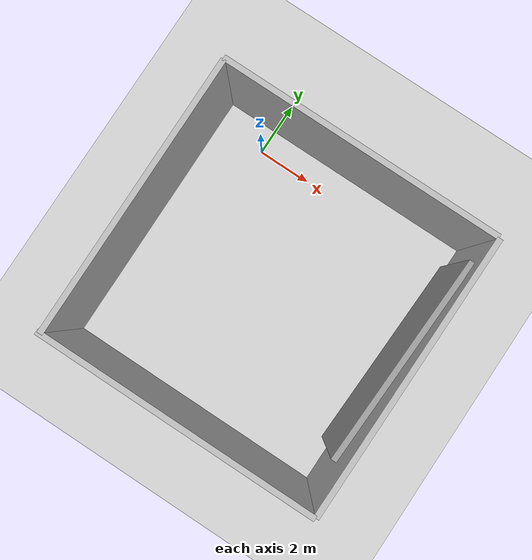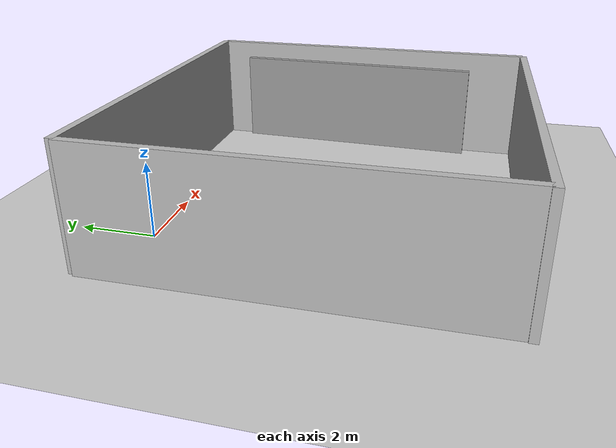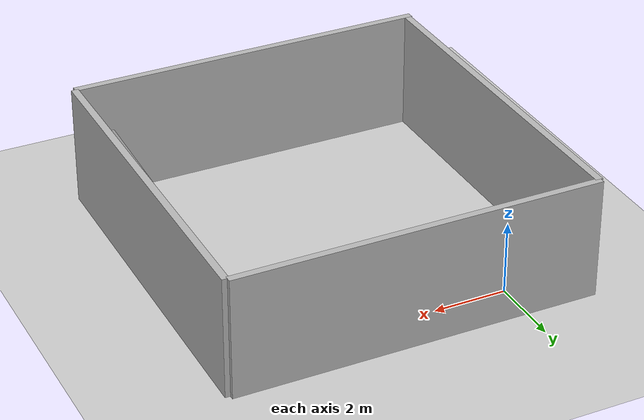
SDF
<sdf version="1.5">
 <world name="default">
  <light name="sun" type="directional">
   <pose>0 0 10 0 -0 0</pose>
   <diffuse>0.8 0.8 0.8 1</diffuse>
   <specular>0.2 0.2 0.2 1</specular>
   <attenuation>
    <range>1000</range>
    <constant>0.9</constant>
    <linear>0.01</linear>
    <quadratic>0.001</quadratic>
   </attenuation>
   <direction>-0.5 0.1 -0.9</direction>
  </light>
  <plugin name="vrc_plugin" filename="libVRCPlugin.so">
   <atlas><model_name>atlas</model_name><pin_link>utorso</pin_link></atlas>
   <drc_vehicle><model_name>golf_cart</model_name><seat_link>chassis</seat_link></drc_vehicle>
   <drc_fire_hose>
    <fire_hose_model>fire_hose</fire_hose_model>
    <coupling_link>coupling</coupling_link>
    <standpipe_model>standpipe</standpipe_model>
    <spout_link>standpipe</spout_link>
    <thread_pitch>-1000</thread_pitch>
    <coupling_relative_pose>1.17038e-05 -0.125623 0.35 -0.0412152 -1.57078 1.61199</coupling_relative_pose>
   </drc_fire_hose>
  </plugin>
  <model name="ground_plane">
   <static>1</static>
   <link name="link">
    <collision name="collision">
     <geometry><plane><normal>0 0 1</normal><size>100 100</size></plane></geometry>
     <surface><friction><ode><mu>100</mu><mu2>50</mu2></ode></friction></surface>
    </collision>
    <visual name="visual">
     <cast_shadows>0</cast_shadows>
     <geometry><plane><normal>0 0 1</normal><size>100 100</size></plane></geometry>
     <material>
      <script><uri>file://media/materials/scripts/gazebo.material</uri><name>Gazebo/Grey</name></script>
     </material>
    </visual>
   </link>
  </model>
  <physics name="default_physics" default="0" type="ode">
   <max_step_size>0.001</max_step_size>
   <real_time_factor>1</real_time_factor>
   <real_time_update_rate>1000</real_time_update_rate>
   <gravity>0 0 -9.8</gravity>
   <magnetic_field>5.5645e-06 2.28758e-05 -4.23884e-05</magnetic_field>
  </physics>
  <scene>
   <ambient>0.4 0.4 0.4 1</ambient>
   <background>0.7 0.7 0.7 1</background>
   <shadows>1</shadows>
   <sky><clouds><speed>1</speed></clouds></sky>
  </scene>
  <spherical_coordinates>
   <surface_model>EARTH_WGS84</surface_model>
   <latitude_deg>0</latitude_deg>
   <longitude_deg>0</longitude_deg>
   <elevation>0</elevation>
   <heading_deg>0</heading_deg>
  </spherical_coordinates>
  <model name="cutout_wall">
   <static>1</static>
   <link name="link">
    <pose>0 0 1.4 0 -0 0</pose>
    <collision name="collision">
     <geometry><box><size>10 0.2 3.8</size></box></geometry>
     <surface>
      <contact>
       <collide_without_contact>1</collide_without_contact>
       <collide_without_contact_bitmask>2</collide_without_contact_bitmask>
      </contact>
     </surface>
    </collision>
    <visual name="visual">
     <cast_shadows>0</cast_shadows>
     <geometry><box><size>10 0.2 3.8</size></box></geometry>
     <material>
      <script>
       <uri>model://cutout_wall/materials/scripts</uri>
       <uri>model://cutout_wall/materials/textures</uri>
       <name>drc_practice/cutout_wall</name>
      </script>
     </material>
    </visual>
    <sensor name="mud_contact" type="contact">
     <always_on>1</always_on>
     <update_rate>1000</update_rate>
     <contact><collision>collision</collision><topic>__default_topic__</topic></contact>
    </sensor>
   </link>
   <plugin name="gazebo_mud" filename="libMudPlugin.so">
    <contact_sensor_name>link/mud_contact</contact_sensor_name>
    <stiffness>0.0</stiffness>
    <damping>40.0</damping>
    <contact_surface_bitmask>2</contact_surface_bitmask>
    <link_name>drill::link</link_name>
   </plugin>
   <pose>3 1 0 0 -0 0</pose>
  </model>
  <model name="cutout_wall_0">
   <static>1</static>
   <link name="link">
    <pose>0 0 1.4 0 -0 0</pose>
    <collision name="collision">
     <geometry><box><size>10 0.2 3.8</size></box></geometry>
     <surface>
      <contact>
       <collide_without_contact>1</collide_without_contact>
       <collide_without_contact_bitmask>2</collide_without_contact_bitmask>
      </contact>
     </surface>
    </collision>
    <visual name="visual">
     <cast_shadows>0</cast_shadows>
     <geometry><box><size>10 0.2 3.8</size></box></geometry>
     <material>
      <script>
       <uri>model://cutout_wall/materials/scripts</uri>
       <uri>model://cutout_wall/materials/textures</uri>
       <name>drc_practice/cutout_wall</name>
      </script>
     </material>
    </visual>
    <sensor name="mud_contact" type="contact">
     <always_on>1</always_on>
     <update_rate>1000</update_rate>
     <contact><collision>collision</collision><topic>__default_topic__</topic></contact>
    </sensor>
   </link>
   <plugin name="gazebo_mud" filename="libMudPlugin.so">
    <contact_sensor_name>link/mud_contact</contact_sensor_name>
    <stiffness>0.0</stiffness>
    <damping>40.0</damping>
    <contact_surface_bitmask>2</contact_surface_bitmask>
    <link_name>drill::link</link_name>
   </plugin>
   <pose>-1.94126 -4.0429 0 0 -0 1.57507</pose>
  </model>
  <model name="cutout_wall_1">
   <static>1</static>
   <link name="link">
    <pose>0 0 1.4 0 -0 0</pose>
    <collision name="collision">
     <geometry><box><size>10 0.2 3.8</size></box></geometry>
     <surface>
      <contact>
       <collide_without_contact>1</collide_without_contact>
       <collide_without_contact_bitmask>2</collide_without_contact_bitmask>
      </contact>
     </surface>
    </collision>
    <visual name="visual">
     <cast_shadows>0</cast_shadows>
     <geometry><box><size>10 0.2 3.8</size></box></geometry>
     <material>
      <script>
       <uri>model://cutout_wall/materials/scripts</uri>
       <uri>model://cutout_wall/materials/textures</uri>
       <name>drc_practice/cutout_wall</name>
      </script>
     </material>
    </visual>
    <sensor name="mud_contact" type="contact">
     <always_on>1</always_on>
     <update_rate>1000</update_rate>
     <contact><collision>collision</collision><topic>__default_topic__</topic></contact>
    </sensor>
   </link>
   <plugin name="gazebo_mud" filename="libMudPlugin.so">
    <contact_sensor_name>link/mud_contact</contact_sensor_name>
    <stiffness>0.0</stiffness>
    <damping>40.0</damping>
    <contact_surface_bitmask>2</contact_surface_bitmask>
    <link_name>drill::link</link_name>
   </plugin>
   <pose>2.95415 -9.03799 0 0 -0 0</pose>
  </model>
  <model name="cutout_wall_2">
   <static>1</static>
   <link name="link">
    <pose>0 0 1.4 0 -0 0</pose>
    <collision name="collision">
     <geometry><box><size>10 0.2 3.8</size></box></geometry>
     <surface>
      <contact>
       <collide_without_contact>1</collide_without_contact>
       <collide_without_contact_bitmask>2</collide_without_contact_bitmask>
      </contact>
     </surface>
    </collision>
    <visual name="visual">
     <cast_shadows>0</cast_shadows>
     <geometry><box><size>10 0.2 3.8</size></box></geometry>
     <material>
      <script>
       <uri>model://cutout_wall/materials/scripts</uri>
       <uri>model://cutout_wall/materials/textures</uri>
       <name>drc_practice/cutout_wall</name>
      </script>
     </material>
    </visual>
    <sensor name="mud_contact" type="contact">
     <always_on>1</always_on>
     <update_rate>1000</update_rate>
     <contact><collision>collision</collision><topic>__default_topic__</topic></contact>
    </sensor>
   </link>
   <plugin name="gazebo_mud" filename="libMudPlugin.so">
    <contact_sensor_name>link/mud_contact</contact_sensor_name>
    <stiffness>0.0</stiffness>
    <damping>40.0</damping>
    <contact_surface_bitmask>2</contact_surface_bitmask>
    <link_name>drill::link</link_name>
   </plugin>
   <pose>7.99859 -4.01588 0 0 0 -1.57885</pose>
  </model>
  <light name="user_point_light_0" type="point">
   <pose>7.46015 0.517395 1 0 -0 0</pose>
   <diffuse>0.5 0.5 0.5 1</diffuse>
   <specular>0.1 0.1 0.1 1</specular>
   <attenuation>
    <range>20</range>
    <constant>0.5</constant>
    <linear>0.01</linear>
    <quadratic>0.001</quadratic>
   </attenuation>
   <cast_shadows>0</cast_shadows>
   <direction>0 0 -1</direction>
  </light>
  <model name="grey_wall_0">
   <static>1</static>
   <link name="link">
    <pose>0 0 1.4 0 -0 0</pose>
    <collision name="collision"><geometry><box><size>7.5 0.2 2.8</size></box></geometry></collision>
    <visual name="visual">
     <cast_shadows>0</cast_shadows>
     <geometry><box><size>7.5 0.2 2.8</size></box></geometry>
     <material>
      <script>
       <uri>model://grey_wall/materials/scripts</uri>
       <uri>model://grey_wall/materials/textures</uri>
       <name>vrc/grey_wall</name>
      </script>
     </material>
    </visual>
   </link>
   <pose>7.72507 -3.67061 0 0 0 -1.60417</pose>
  </model>
 </world>
</sdf>
